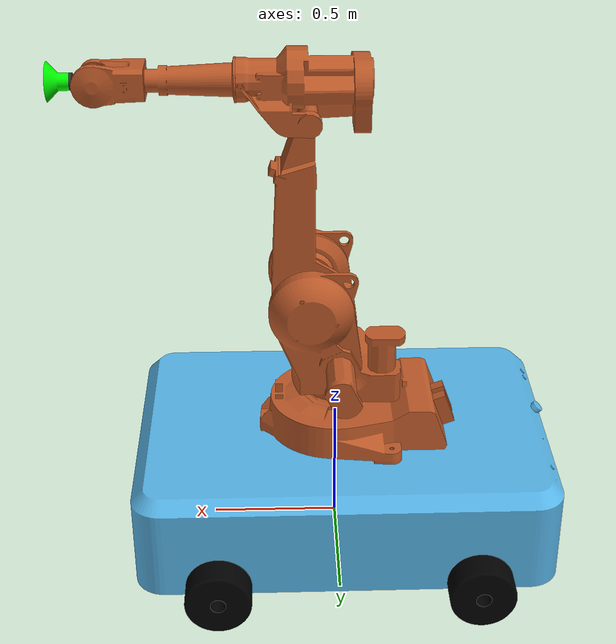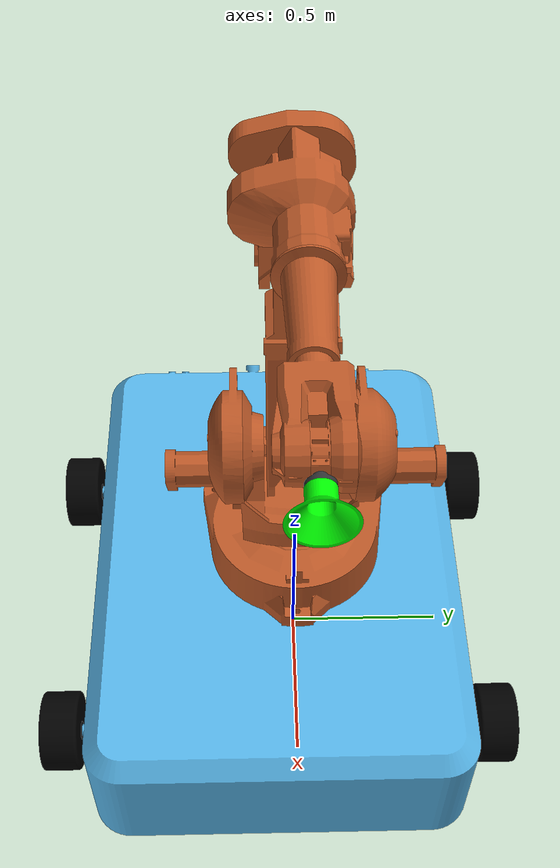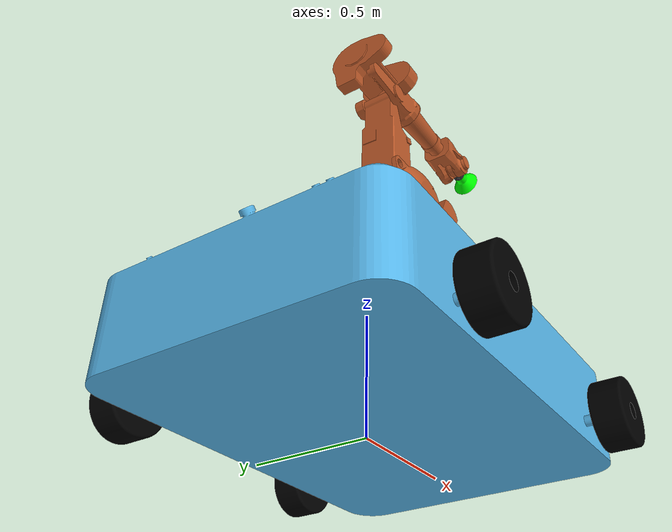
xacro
<?xml version="1.0" ?>
<!-- |    This document was autogenerated by xacro from irb2400.xacro                  | -->
<!-- |    EDITING THIS FILE BY HAND IS NOT RECOMMENDED                                 | -->
<robot name="abb_irb2400" xmlns:xacro="http://ros.org/wiki/xacro">
    <!-- Conversion were obtained from http://www.e-paint.co.uk/Lab_values.asp
       unless otherwise stated. -->
    <!-- Actual colors -->
    <!-- NCS 2070-Y60R orange, standard robot color 1974 - May 2014 -->
    <!-- RAL 7035 light grey (abb graphite white), standard robot color May 2014 - current -->
    <!-- RAL 9003 signal white (abb white), clean room robot color -->
    <!-- RAL 7032 pebble gray, controller -->
    <!-- RAL 7012 basalt gray (abb dark gray) , robot primer -->
    <!-- RAL 7021 black gray (abb black) , robot with dark link color -->
    <!-- Other robot colours available, but not limited too. -->
    <!-- RAL 3001 signal red -->
    <!-- RAL 3002 carmine red -->
    <!-- RAL 5002 ultramarine blue -->
    <!-- RAL 5015 sky blue -->
    <!-- RAL 6002 leaf green -->
    <!-- RAL 9002 gray white -->
    <!-- RAL 9010 pure white -->
    <!-- approximations -->
    <!-- yellow, collision model -->
    <!-- link list -->
    <link name="base_link">
        <visual>
            <origin rpy="0 0 0" xyz="0 0 0" />
            <geometry>
                <mesh filename="package://abb_irb2400_support/meshes/irb2400/visual/base_link.dae" />
            </geometry>
            <material name="">
                <color rgba="0.7372549 0.3490196 0.1607843 1" />
            </material>
        </visual>
        <collision>
            <geometry>
                <mesh filename="package://abb_irb2400_support/meshes/irb2400/collision/base_link.stl" />
            </geometry>
            <material name="">
                <color rgba="1 1 0 1" />
            </material>
        </collision>

        <inertial>
            <mass value="0.1" />
            <inertia ixx="0.03" iyy="0.03" izz="0.03" ixy="0.0" ixz="0.0" iyz="0.0" />
        </inertial>

    </link>
    <link name="link_1">
        <visual>
            <origin rpy="0 0 0" xyz="0 0 0" />
            <geometry>
                <mesh filename="package://abb_irb2400_support/meshes/irb2400/visual/link_1.dae" />
            </geometry>
            <material name="">
                <color rgba="0.7372549 0.3490196 0.1607843 1" />
            </material>
        </visual>
        <collision>
            <origin rpy="0 0 0" xyz="0 0 0" />
            <geometry>
                <mesh filename="package://abb_irb2400_support/meshes/irb2400/collision/link_1.stl" />
            </geometry>
            <material name="">
                <color rgba="1 1 0 1" />
            </material>
        </collision>

        <inertial>
            <mass value="0.1" />
            <inertia ixx="0.03" iyy="0.03" izz="0.03" ixy="0.0" ixz="0.0" iyz="0.0" />
        </inertial>

    </link>
    <link name="link_2">
        <visual>
            <origin rpy="0 0 0" xyz="0 0 0" />
            <geometry>
                <mesh filename="package://abb_irb2400_support/meshes/irb2400/visual/link_2.dae" />
            </geometry>
            <material name="">
                <color rgba="0.7372549 0.3490196 0.1607843 1" />
            </material>
        </visual>
        <collision>
            <origin rpy="0 0 0" xyz="0 0 0" />
            <geometry>
                <mesh filename="package://abb_irb2400_support/meshes/irb2400/collision/link_2_whole.stl" />
            </geometry>
            <material name="">
                <color rgba="1 1 0 1" />
            </material>
        </collision>

        <inertial>
            <mass value="0.1" />
            <inertia ixx="0.03" iyy="0.03" izz="0.03" ixy="0.0" ixz="0.0" iyz="0.0" />
        </inertial>

    </link>
    <link name="link_3">
        <visual>
            <origin rpy="0 0 0" xyz="0 0 0" />
            <geometry>
                <mesh filename="package://abb_irb2400_support/meshes/irb2400/visual/link_3.dae" />
            </geometry>
            <material name="">
                <color rgba="0.7372549 0.3490196 0.1607843 1" />
            </material>
        </visual>
        <collision>
            <origin rpy="0 0 0" xyz="0 0 0" />
            <geometry>
                <mesh filename="package://abb_irb2400_support/meshes/irb2400/collision/link_3.stl" />
            </geometry>
            <material name="">
                <color rgba="1 1 0 1" />
            </material>
        </collision>

        <inertial>
            <mass value="0.1" />
            <inertia ixx="0.03" iyy="0.03" izz="0.03" ixy="0.0" ixz="0.0" iyz="0.0" />
        </inertial>

    </link>
    <link name="link_4">
        <visual>
            <origin rpy="0 0 0" xyz="0 0 0" />
            <geometry>
                <mesh filename="package://abb_irb2400_support/meshes/irb2400/visual/link_4.dae" />
            </geometry>
            <material name="">
                <color rgba="0.7372549 0.3490196 0.1607843 1" />
            </material>
        </visual>
        <collision>
            <origin rpy="0 0 0" xyz="0 0 0" />
            <geometry>
                <mesh filename="package://abb_irb2400_support/meshes/irb2400/collision/link_4.stl" />
            </geometry>
            <material name="">
                <color rgba="1 1 0 1" />
            </material>
        </collision>

        <inertial>
            <mass value="0.1" />
            <inertia ixx="0.03" iyy="0.03" izz="0.03" ixy="0.0" ixz="0.0" iyz="0.0" />
        </inertial>

    </link>
    <link name="link_5">
        <visual>
            <origin rpy="0 0 0" xyz="0 0 0" />
            <geometry>
                <mesh filename="package://abb_irb2400_support/meshes/irb2400/visual/link_5.dae" />
            </geometry>
            <material name="">
                <color rgba="0.7372549 0.3490196 0.1607843 1" />
            </material>
        </visual>
        <collision>
            <origin rpy="0 0 0" xyz="0 0 0" />
            <geometry>
                <mesh filename="package://abb_irb2400_support/meshes/irb2400/collision/link_5.stl" />
            </geometry>
            <material name="">
                <color rgba="1 1 0 1" />
            </material>
        </collision>

        <inertial>
            <mass value="0.1" />
            <inertia ixx="0.03" iyy="0.03" izz="0.03" ixy="0.0" ixz="0.0" iyz="0.0" />
        </inertial>

    </link>
    <link name="link_6">
        <visual>
            <origin rpy="0 0 0" xyz="0 0 0" />
            <geometry>
                <mesh filename="package://abb_irb2400_support/meshes/irb2400/visual/link_6.dae" />
            </geometry>
            <material name="">
                <color rgba="0.1882353 0.1960784 0.2039216 1" />
            </material>
        </visual>
        <collision>
            <origin rpy="0 0 0" xyz="0 0 0" />
            <geometry>
                <mesh filename="package://abb_irb2400_support/meshes/irb2400/collision/link_6.stl" />
            </geometry>
            <material name="">
                <color rgba="1 1 0 1" />
            </material>
        </collision>

        <inertial>
            <mass value="0.1" />
            <inertia ixx="0.03" iyy="0.03" izz="0.03" ixy="0.0" ixz="0.0" iyz="0.0" />
        </inertial>

    </link>
    <link name="tool0" />
    <!-- end of link list -->
    <!--Dummy link-->
    <link name="dummy" />
    <!--  Start of Mobile Base Links-->
    <!--Chassis-->
    <link name="chassis">
        <visual>
            <origin rpy="3.14 0 0" xyz="0 0 0" />
            <geometry>
                <mesh filename="package://abb_irb2400_support/meshes/irb2400/visual/mobile_base.dae" />
            </geometry>
        </visual>
        <collision>
            <origin rpy="3.14 0 0" xyz="0 0 0" />
            <geometry>
                <mesh filename="package://abb_irb2400_support/meshes/irb2400/collision/mobile_base.stl" />
            </geometry>
        </collision>

        <inertial>
            <mass value="0.1" />
            <inertia ixx="0.03" iyy="0.03" izz="0.03" ixy="0.0" ixz="0.0" iyz="0.0" />
        </inertial>

    </link>
    <!--    Right Back Wheel-->
    <link name="right_back_wheel">
        <visual>
            <origin rpy="1.57 0 0" xyz="0 0 0" />
            <geometry>
                <mesh filename="package://abb_irb2400_support/meshes/irb2400/visual/wheel_mobile_base.dae" />
            </geometry>
            <material name="Black">
                <color rgba="0 0 0 1" />
            </material>
        </visual>
        <collision>
            <origin rpy="1.57 0 0" xyz="0 0 0" />
            <geometry>
                <mesh filename="package://abb_irb2400_support/meshes/irb2400/collision/wheel_mobile_base.stl" />
            </geometry>
        </collision>

        <inertial>
            <mass value="0.1" />
            <inertia ixx="0.03" iyy="0.03" izz="0.03" ixy="0.0" ixz="0.0" iyz="0.0" />
        </inertial>

    </link>
    <!--    Right Front Wheel-->
    <link name="right_front_wheel">
        <visual>
            <origin rpy="1.57 0 0" xyz="0 0 0" />
            <geometry>
                <mesh filename="package://abb_irb2400_support/meshes/irb2400/visual/wheel_mobile_base.dae" />
            </geometry>
            <material name="Black">
                <color rgba="0 0 0 1" />
            </material>
        </visual>
        <collision>
            <origin rpy="1.57 0 0" xyz="0 0 0" />
            <geometry>
                <mesh filename="package://abb_irb2400_support/meshes/irb2400/collision/wheel_mobile_base.stl" />
            </geometry>
        </collision>

        <inertial>
            <mass value="0.1" />
            <inertia ixx="0.03" iyy="0.03" izz="0.03" ixy="0.0" ixz="0.0" iyz="0.0" />
        </inertial>

    </link>
    <!--   Left Back Wheel-->
    <link name="left_back_wheel">
        <visual>
            <origin rpy="1.57 0 0" xyz="0 0 0" />
            <geometry>
                <mesh filename="package://abb_irb2400_support/meshes/irb2400/visual/wheel_mobile_base.dae" />
            </geometry>
            <material name="Black">
                <color rgba="0 0 0 1" />
            </material>
        </visual>
        <collision>
            <origin rpy="1.57 0 0" xyz="0 0 0" />
            <geometry>
                <mesh filename="package://abb_irb2400_support/meshes/irb2400/collision/wheel_mobile_base.stl" />
            </geometry>
        </collision>

        <inertial>
            <mass value="0.1" />
            <inertia ixx="0.03" iyy="0.03" izz="0.03" ixy="0.0" ixz="0.0" iyz="0.0" />
        </inertial>

    </link>
    <!--    Left Front Wheel-->
    <link name="left_front_wheel">
        <visual>
            <origin rpy="1.57 0 0" xyz="0 0 0" />
            <geometry>
                <mesh filename="package://abb_irb2400_support/meshes/irb2400/visual/wheel_mobile_base.dae" />
            </geometry>
            <material name="Black">
                <color rgba="0 0 0 1" />
            </material>
        </visual>
        <collision>
            <origin rpy="1.57 0 0" xyz="0 0 0" />
            <geometry>
                <mesh filename="package://abb_irb2400_support/meshes/irb2400/collision/wheel_mobile_base.stl" />
            </geometry>
        </collision>

        <inertial>
            <mass value="0.1" />
            <inertia ixx="0.03" iyy="0.03" izz="0.03" ixy="0.0" ixz="0.0" iyz="0.0" />
        </inertial>

    </link>
    <!--End of Mobile Base links-->
    <!--  Suction Cup Start-->
    <link name="suction_cup_end_effector">
        <visual>
            <origin rpy="0 0 0" xyz="0 0 0.0001" />
            <geometry>
                <mesh filename="package://abb_irb2400_support/meshes/irb2400/visual/suction_cup.dae" />
            </geometry>
            <material name="red">
                <color rgba="0 1 0 1" />
            </material>
        </visual>
        <collision>
            <origin rpy="0 0 0" xyz="0 0 0" />
            <geometry>
                <mesh filename="package://abb_irb2400_support/meshes/irb2400/collision/suction_cup.stl" />
            </geometry>
        </collision>

        <inertial>
            <mass value="0.1" />
            <inertia ixx="0.03" iyy="0.03" izz="0.03" ixy="0.0" ixz="0.0" iyz="0.0" />
        </inertial>

    </link>
    <!-- Suction Cup End -->
    <!-- joint list -->
    <joint name="joint_1" type="revolute">
        <origin rpy="0 0 0" xyz="0 0 0" />
        <parent link="base_link" />
        <child link="link_1" />
        <axis xyz="0 0 1" />
        <limit effort="0" lower="-3.1416" upper="3.1416" velocity="2.618" />
    </joint>
    <joint name="joint_2" type="revolute">
        <origin rpy="0 0 0" xyz="0.1 0 0.615" />
        <parent link="link_1" />
        <child link="link_2" />
        <axis xyz="0 1 0" />
        <limit effort="0" lower="-1.7453" upper="1.9199" velocity="2.618" />
    </joint>
    <joint name="joint_3" type="revolute">
        <origin rpy="0 0 0" xyz="0 0 0.705" />
        <parent link="link_2" />
        <child link="link_3" />
        <axis xyz="0 1 0" />
        <limit effort="0" lower="-1.0472" upper="1.1345" velocity="2.618" />
    </joint>
    <joint name="joint_4" type="revolute">
        <origin rpy="0 0 0" xyz="0.258 0 0.135" />
        <parent link="link_3" />
        <child link="link_4" />
        <axis xyz="1 0 0" />
        <limit effort="0" lower="-3.49" upper="3.49" velocity="6.2832" />
    </joint>
    <joint name="joint_5" type="revolute">
        <origin rpy="0 0 0" xyz="0.497 0 0" />
        <parent link="link_4" />
        <child link="link_5" />
        <axis xyz="0 1 0" />
        <limit effort="0" lower="-2.0944" upper="2.0944" velocity="6.2832" />
    </joint>
    <joint name="joint_6" type="revolute">
        <origin rpy="0 0 0" xyz="0.085 0 0" />
        <parent link="link_5" />
        <child link="link_6" />
        <axis xyz="1 0 0" />
        <limit effort="0" lower="-6.9813" upper="6.9813" velocity="7.854" />
    </joint>
    <joint name="joint_6-tool0" type="fixed">
        <parent link="link_6" />
        <child link="tool0" />
        <origin rpy="0 1.57079632679 0" xyz="0 0 0" />
    </joint>
    <!-- end of joint list -->
    <!-- Start of Mobile base joints -->
    <joint name="left_front_wheel_joint" type="continuous">
        <parent link="chassis" />
        <child link="right_back_wheel" />
        <origin rpy="0 0 0" xyz="-0.535 -0.76 -0.35" />
        <axis xyz="0 1 0" />
        <limit effort="100" velocity="100" />
        <dynamics damping="0.0" friction="0.0" />
    </joint>
    <joint name="left_back_wheel_joint" type="continuous">
        <parent link="chassis" />
        <child link="right_front_wheel" />
        <origin rpy="0 0 0" xyz="0.465 -0.76 -0.35" />
        <axis xyz="0 1 0" />
        <limit effort="100" velocity="100" />
        <dynamics damping="0.0" friction="0.0" />
    </joint>
    <joint name="right_front_wheel_joint" type="continuous">
        <parent link="chassis" />
        <child link="left_back_wheel" />
        <origin xyz="-0.535 0.64 -0.35" rpy="0 0 0" />
        <axis xyz="0 1 0" />
        <limit effort="100" velocity="100" />
        <dynamics damping="0.0" friction="0.0" />
    </joint>
    <joint name="right_back_wheel_joint" type="continuous">
        <parent link="chassis" />
        <child link="left_front_wheel" />
        <origin rpy="0 0 0" xyz="0.465 0.64 -0.35" />
        <axis xyz="0 1 0" />
        <limit effort="100" velocity="100" />
        <dynamics damping="0.0" friction="0.0" />
    </joint>
    <!--  End of Mobile base joints-->
    <!-- Suction Cup joint -->
    <joint name="suction_to_tool0" type="fixed">
        <parent link="tool0" />
        <child link="suction_cup_end_effector" />
        <origin rpy="0 0 0" xyz="0 0 0" />
    </joint>
    <!--  End-->
    <joint name="dummy_joint" type="fixed">
        <parent link="dummy" />
        <child link="chassis" />
        <origin xyz="0.0 0.0 0.43" rpy="0 0 0" />
    </joint>
    <!--  ABB robots connection to chassis base-->
    <joint name="chassis_to_base_link" type="fixed">
        <origin rpy="0 0 0" xyz="0 0 0" />
        <parent link="chassis" />
        <child link="base_link" />
    </joint>

    <transmission name="trans_joint_1">
        <type>transmission_interface/SimpleTransmission</type>
        <joint name="joint_1">
            <hardwareInterface>hardware_interface/EffortJointInterface</hardwareInterface>
        </joint>
        <actuator name="joint_1_motor">
            <hardwareInterface>hardware_interface/VelocityJointInterface</hardwareInterface>
            <mechanicalReduction>1</mechanicalReduction>
        </actuator>
    </transmission>
    <transmission name="trans_joint_2">
        <type>transmission_interface/SimpleTransmission</type>
        <joint name="joint_2">
            <hardwareInterface>hardware_interface/EffortJointInterface</hardwareInterface>
        </joint>
        <actuator name="joint_2_motor">
            <hardwareInterface>hardware_interface/VelocityJointInterface</hardwareInterface>
            <mechanicalReduction>1</mechanicalReduction>
        </actuator>
    </transmission>
    <transmission name="trans_joint_3">
        <type>transmission_interface/SimpleTransmission</type>
        <joint name="joint_3">
            <hardwareInterface>hardware_interface/EffortJointInterface</hardwareInterface>
        </joint>
        <actuator name="joint_3_motor">
            <hardwareInterface>hardware_interface/VelocityJointInterface</hardwareInterface>
            <mechanicalReduction>1</mechanicalReduction>
        </actuator>
    </transmission>
    <transmission name="trans_joint_4">
        <type>transmission_interface/SimpleTransmission</type>
        <joint name="joint_4">
            <hardwareInterface>hardware_interface/EffortJointInterface</hardwareInterface>
        </joint>
        <actuator name="joint_4_motor">
            <hardwareInterface>hardware_interface/VelocityJointInterface</hardwareInterface>
            <mechanicalReduction>1</mechanicalReduction>
        </actuator>
    </transmission>
    <transmission name="trans_joint_5">
        <type>transmission_interface/SimpleTransmission</type>
        <joint name="joint_5">
            <hardwareInterface>hardware_interface/EffortJointInterface</hardwareInterface>
        </joint>
        <actuator name="joint_5_motor">
            <hardwareInterface>hardware_interface/VelocityJointInterface</hardwareInterface>
            <mechanicalReduction>1</mechanicalReduction>
        </actuator>
    </transmission>
    <transmission name="trans_joint_6">
        <type>transmission_interface/SimpleTransmission</type>
        <joint name="joint_6">
            <hardwareInterface>hardware_interface/EffortJointInterface</hardwareInterface>
        </joint>
        <actuator name="joint_6_motor">
            <hardwareInterface>hardware_interface/VelocityJointInterface</hardwareInterface>
            <mechanicalReduction>1</mechanicalReduction>
        </actuator>
    </transmission>
    <transmission name="trans_left_front_wheel_joint">
        <type>transmission_interface/SimpleTransmission</type>
        <joint name="left_front_wheel_joint">
            <hardwareInterface>hardware_interface/EffortJointInterface</hardwareInterface>
        </joint>
        <actuator name="left_front_wheel_joint_motor">
            <hardwareInterface>hardware_interface/VelocityJointInterface</hardwareInterface>
            <mechanicalReduction>1</mechanicalReduction>
        </actuator>
    </transmission>
    <transmission name="trans_left_back_wheel_joint">
        <type>transmission_interface/SimpleTransmission</type>
        <joint name="left_back_wheel_joint">
            <hardwareInterface>hardware_interface/EffortJointInterface</hardwareInterface>
        </joint>
        <actuator name="left_back_wheel_joint_motor">
            <hardwareInterface>hardware_interface/VelocityJointInterface</hardwareInterface>
            <mechanicalReduction>1</mechanicalReduction>
        </actuator>
    </transmission>
    <transmission name="trans_right_front_wheel_joint">
        <type>transmission_interface/SimpleTransmission</type>
        <joint name="right_front_wheel_joint">
            <hardwareInterface>hardware_interface/EffortJointInterface</hardwareInterface>
        </joint>
        <actuator name="right_front_wheel_joint_motor">
            <hardwareInterface>hardware_interface/VelocityJointInterface</hardwareInterface>
            <mechanicalReduction>1</mechanicalReduction>
        </actuator>
    </transmission>
    <transmission name="trans_right_back_wheel_joint">
        <type>transmission_interface/SimpleTransmission</type>
        <joint name="right_back_wheel_joint">
            <hardwareInterface>hardware_interface/EffortJointInterface</hardwareInterface>
        </joint>
        <actuator name="right_back_wheel_joint_motor">
            <hardwareInterface>hardware_interface/VelocityJointInterface</hardwareInterface>
            <mechanicalReduction>1</mechanicalReduction>
        </actuator>
    </transmission>
    <gazebo>
        <plugin name="gazebo_ros_control" filename="libgazebo_ros_control.so">
            <robotNamespace>/</robotNamespace>
        </plugin>
    </gazebo>
</robot>
